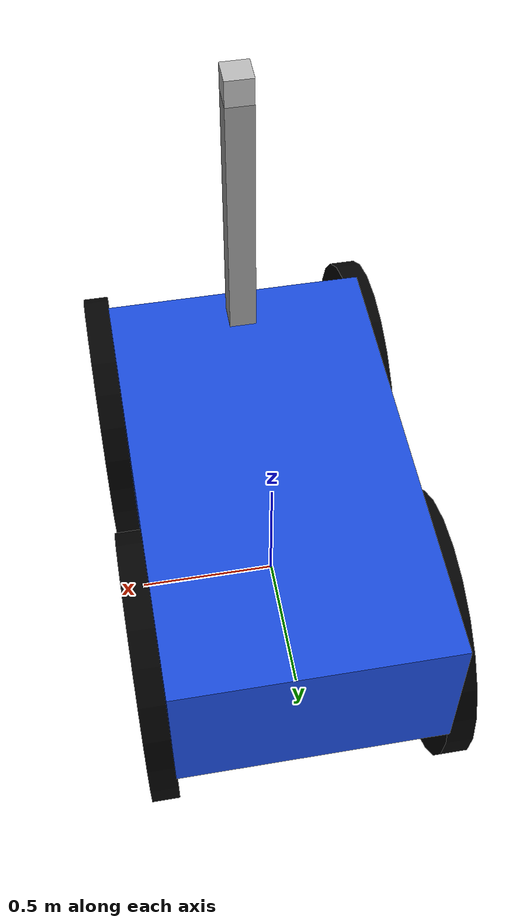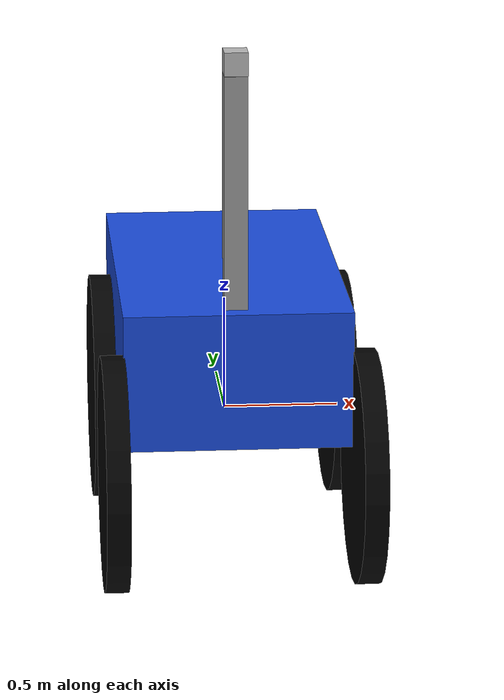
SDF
<?xml version='1.0'?>
<sdf version='1.7'>
  <model name='robot'>

    <link name='link'>
      <inertial>
        <mass>0.963128</mass>
        <inertia>
          <ixx>0.254623</ixx>
          <ixy>0</ixy>
          <ixz>0</ixz>
          <iyy>0.103612</iyy>
          <iyz>0</iyz>
          <izz>0.302045</izz>
        </inertia>
        <pose>0 0 0 0 -0 0</pose>
      </inertial>
      <self_collide>0</self_collide>
      <enable_wind>0</enable_wind>
      <kinematic>0</kinematic>
      <pose>0 0 0.373965 0 -0 0</pose>
      <visual name='chassis_visual'>
        <geometry>
          <box>
            <size>0.97 1.68 0.591646</size>
          </box>
        </geometry>
        <material>
          <ambient>0.102 0.294 0.859 1</ambient>
          <diffuse>0.102 0.294 0.859 1</diffuse>
          <specular>0.5 0.5 0.5 1</specular>
        </material>
      </visual>

      <collision name='chassis_collision'>
        <laser_retro>0</laser_retro>
        <max_contacts>10</max_contacts>
        <pose>0 0 0 0 -0 0</pose>
        <geometry>
          <box>
            <size>0.97 1.68 0.28</size>
          </box>
        </geometry>
        <surface>
          <friction>
            <ode>
              <mu>1</mu>
              <mu2>1</mu2>
              <fdir1>0 0 0</fdir1>
              <slip1>0</slip1>
              <slip2>0</slip2>
            </ode>
            <torsional>
              <coefficient>1</coefficient>
              <patch_radius>0</patch_radius>
              <surface_radius>0</surface_radius>
              <use_patch_radius>1</use_patch_radius>
              <ode>
                <slip>0</slip>
              </ode>
            </torsional>
          </friction>
          <bounce>
            <restitution_coefficient>0</restitution_coefficient>
            <threshold>1e+06</threshold>
          </bounce>
          <contact>
            <collide_without_contact>0</collide_without_contact>
            <collide_without_contact_bitmask>1</collide_without_contact_bitmask>
            <collide_bitmask>1</collide_bitmask>
            <ode>
              <soft_cfm>0</soft_cfm>
              <soft_erp>0.2</soft_erp>
              <kp>1e+13</kp>
              <kd>1</kd>
              <max_vel>0.01</max_vel>
              <min_depth>0</min_depth>
            </ode>
            <bullet>
              <split_impulse>1</split_impulse>
              <split_impulse_penetration_threshold>-0.01</split_impulse_penetration_threshold>
              <soft_cfm>0</soft_cfm>
              <soft_erp>0.2</soft_erp>
              <kp>1e+13</kp>
              <kd>1</kd>
            </bullet>
          </contact>
        </surface>
      </collision>

      <sensor name="lidar_back" type="gpu_lidar">
        <pose>0 0.85 0.2 0 0 1.5708</pose>
        <topic>lidar_back</topic>
        <update_rate>10</update_rate>
        <always_on>1</always_on>
        <visualize>1</visualize>
        <lidar>
            <scan>
            <horizontal>
              <samples>640</samples>
              <resolution>1</resolution>
              <min_angle>-1.6</min_angle>
              <max_angle>1.6</max_angle>
            </horizontal>
            <vertical>
              <samples>1</samples>
              <resolution>1</resolution>
              <min_angle>-0.1</min_angle>
              <max_angle>0.1</max_angle>
            </vertical>
          </scan>
          <range>
            <min>0.08</min>
            <max>10.0</max>
            <resolution>0.01</resolution>
          </range>
        </lidar>
        <alwaysOn>1</alwaysOn>
        <visualize>true</visualize>
      </sensor>

      <sensor name="lidar_front" type="gpu_lidar">
        <pose>0 -0.8 0.2 0 0 -1.5708</pose>
        <topic>lidar_front</topic>
        <update_rate>10</update_rate>
        <always_on>1</always_on>
        <visualize>1</visualize>
        <lidar>
            <scan>
            <horizontal>
              <samples>640</samples>
              <resolution>1</resolution>
              <min_angle>-1.6</min_angle>
              <max_angle>1.6</max_angle>
            </horizontal>
            <vertical>
              <samples>1</samples>
              <resolution>1</resolution>
              <min_angle>-0.1</min_angle>
              <max_angle>0.1</max_angle>
            </vertical>
          </scan>
          <range>
            <min>0.1</min>
            <max>25</max>
            <resolution>0.01</resolution>
          </range>
        </lidar>
        <alwaysOn>1</alwaysOn>
        <visualize>true</visualize>
      </sensor>

    </link>

    <link name='link_0'>
      <inertial>
        <mass>0.00987023</mass>
        <inertia>
          <ixx>0.00082989</ixx>
          <ixy>0</ixy>
          <ixz>0</ixz>
          <iyy>0.00083146</iyy>
          <iyz>0</iyz>
          <izz>1.632e-05</izz>
        </inertia>
        <pose>0 0 0 0 -0 0</pose>
      </inertial>
      <pose>-0.0075 -0.715 1.16917 0 -0 0</pose>
      <gravity>1</gravity>
      <self_collide>0</self_collide>
      <kinematic>0</kinematic>
      <enable_wind>0</enable_wind>
      <visual name='visual'>
        <pose>0 0 0 0 -0 0</pose>
        <geometry>
          <box>
            <size>0.1 0.1 1</size>
          </box>
        </geometry>
        <material>
          <lighting>1</lighting>
          <script>
            <uri>file://media/materials/scripts/gazebo.material</uri>
            <name>Gazebo/Grey</name>
          </script>
          <shader type='pixel'>
            <normal_map>__default__</normal_map>
          </shader>
          <ambient>0.3 0.3 0.3 1</ambient>
          <diffuse>0.7 0.7 0.7 1</diffuse>
          <specular>0.01 0.01 0.01 1</specular>
          <emissive>0 0 0 1</emissive>
        </material>
        <transparency>0</transparency>
        <cast_shadows>1</cast_shadows>
      </visual>
      <collision name='collision'>
        <laser_retro>0</laser_retro>
        <max_contacts>10</max_contacts>
        <pose>0 0 0 0 -0 0</pose>
        <geometry>
          <box>
            <size>0.104281 0.094668 1</size>
          </box>
        </geometry>
        <surface>
          <friction>
            <ode>
              <mu>1</mu>
              <mu2>1</mu2>
              <fdir1>0 0 0</fdir1>
              <slip1>0</slip1>
              <slip2>0</slip2>
            </ode>
            <torsional>
              <coefficient>1</coefficient>
              <patch_radius>0</patch_radius>
              <surface_radius>0</surface_radius>
              <use_patch_radius>1</use_patch_radius>
              <ode>
                <slip>0</slip>
              </ode>
            </torsional>
          </friction>
          <bounce>
            <restitution_coefficient>0</restitution_coefficient>
            <threshold>1e+06</threshold>
          </bounce>
          <contact>
            <collide_without_contact>0</collide_without_contact>
            <collide_without_contact_bitmask>1</collide_without_contact_bitmask>
            <collide_bitmask>1</collide_bitmask>
            <ode>
              <soft_cfm>0</soft_cfm>
              <soft_erp>0.2</soft_erp>
              <kp>1e+13</kp>
              <kd>1</kd>
              <max_vel>0.01</max_vel>
              <min_depth>0</min_depth>
            </ode>
            <bullet>
              <split_impulse>1</split_impulse>
              <split_impulse_penetration_threshold>-0.01</split_impulse_penetration_threshold>
              <soft_cfm>0</soft_cfm>
              <soft_erp>0.2</soft_erp>
              <kp>1e+13</kp>
              <kd>1</kd>
            </bullet>
          </contact>
        </surface>
      </collision>
    </link>

    <link name='wheel_fl'>
      <pose>0.53 -0.86 0 3.14 1.57 3.14</pose>
      <visual name='wheel_fl_visual'>
        <geometry>
          <cylinder>
            <radius>0.5</radius>
            <length>0.1</length>
          </cylinder>
        </geometry>
         <material>
          <ambient>0.0118 0.0118 0.0118 1</ambient>
          <diffuse>0.0118 0.0118 0.0118 1</diffuse>
          <specular>0.5 0.5 0.5 1</specular>
        </material>
      </visual>
      <collision name='wheel_fl_collision'>
        <geometry>
          <cylinder>
            <radius>0.5</radius>
            <length>0.1</length>
          </cylinder>
        </geometry>
      </collision>
    </link>
    <link name='wheel_fr'>
      <pose>-0.53 -0.89 0 3.14 1.57 3.14</pose>
      <visual name='wheel_fr_visual'>
        <geometry>
          <cylinder>
            <radius>0.5</radius>
            <length>0.1</length>
          </cylinder>
        </geometry>
         <material>
          <ambient>0.0118 0.0118 0.0118 1</ambient>
          <diffuse>0.0118 0.0118 0.0118 1</diffuse>
          <specular>0.5 0.5 0.5 1</specular>
        </material>
      </visual>
      <collision name='wheel_fr_collision'>
        <geometry>
          <cylinder>
            <radius>0.5</radius>
            <length>0.1</length>
          </cylinder>
        </geometry>
      </collision>
    </link>

    <link name='wheel_bl'>
      <pose>0.53 0.34 0 3.14 1.57 3.14</pose>
      <visual name='wheel_bl_visual'>
        <geometry>
          <cylinder>
            <radius>0.5</radius>
            <length>0.1</length>
          </cylinder>
        </geometry>
         <material>
          <ambient>0.0118 0.0118 0.0118 1</ambient>
          <diffuse>0.0118 0.0118 0.0118 1</diffuse>
          <specular>0.5 0.5 0.5 1</specular>
        </material>
      </visual>
      <collision name='wheel_bl_collision'>
        <geometry>
          <cylinder>
            <radius>0.5</radius>
            <length>0.1</length>
          </cylinder>
        </geometry>
      </collision>
    </link>

    <link name='wheel_br'>
      <pose>-0.53 0.34 0 3.14 1.57 3.14</pose>
      <visual name='wheel_br_visual'>
        <geometry>
          <cylinder>
            <radius>0.5</radius>
            <length>0.1</length>
          </cylinder>
        </geometry>
         <material>
          <ambient>0.0118 0.0118 0.0118 1</ambient>
          <diffuse>0.0118 0.0118 0.0118 1</diffuse>
          <specular>0.5 0.5 0.5 1</specular>
        </material>
      </visual>
      <collision name='wheel_br_collision'>
        <geometry>
          <cylinder>
            <radius>0.5</radius>
            <length>0.1</length>
          </cylinder>
        </geometry>
      </collision>
    </link>

    <model name='camera'>
      <pose>-0.007084 -0.713487 1.71975 3.14159 0 -1.5708</pose>
      <static>0</static>
      <link name='link'>
        <inertial>
          <mass>0.1</mass>
          <inertia>
            <ixx>0.000166667</ixx>
            <iyy>0.000166667</iyy>
            <izz>0.000166667</izz>
            <ixy>0</ixy>
            <ixz>0</ixz>
            <iyz>0</iyz>
          </inertia>
          <pose>0 0 0 0 0 0</pose>
        </inertial>
        <collision name='collision'>
          <geometry>
            <box>
              <size>0.1 0.1 0.1</size>
            </box>
          </geometry>
          <max_contacts>10</max_contacts>
          <surface>
            <contact>
              <ode/>
            </contact>
            <bounce/>
            <friction>
              <torsional>
                <ode/>
              </torsional>
              <ode/>
            </friction>
          </surface>
        </collision>
        <visual name='visual'>
          <geometry>
            <box>
              <size>0.1 0.1 0.1</size>
            </box>
          </geometry>
        </visual>
        <sensor name='camera' type='camera'>
          <camera>
            <horizontal_fov>1.67</horizontal_fov>
            <image>
              <width>320</width>
              <height>240</height>
            </image>
            <clip>
              <near>0.1</near>
              <far>100</far>
            </clip>
          </camera>
          <always_on>1</always_on>
          <update_rate>30</update_rate>
          <visualize>1</visualize>
        </sensor>
        <self_collide>0</self_collide>
        <enable_wind>0</enable_wind>
        <kinematic>0</kinematic>
      </link>
    </model>

    <joint name='joint_fl' type='revolute'>
      <parent>link</parent>
      <child>wheel_fl</child>
    </joint>

    <joint name='joint_fr' type='revolute'>
      <parent>link</parent>
      <child>wheel_fr</child>
    </joint>

    <joint name='joint_bl' type='revolute'>
      <parent>link</parent>
      <child>wheel_bl</child>
    </joint>

    <joint name='joint_br' type='revolute'>
      <parent>link</parent>
      <child>wheel_br</child>
    </joint>

    <joint name='link_0_JOINT_1' type='revolute'>
      <parent>link_0</parent>
      <child>camera::link</child>
      <pose>0 0 0 0 0 0</pose>
      <physics>
        <ode>
          <limit>
            <cfm>0</cfm>
            <erp>0.2</erp>
          </limit>
          <suspension>
            <cfm>0</cfm>
            <erp>0.2</erp>
          </suspension>
        </ode>
      </physics>
    </joint>

    <joint name='link_JOINT_0' type='fixed'>
      <parent>link</parent>
      <child>link_0</child>
      <pose>0 0 0 0 0 0</pose>
      <physics>
        <ode>
          <limit>
            <cfm>0</cfm>
            <erp>0.2</erp>
          </limit>
          <suspension>
            <cfm>0</cfm>
            <erp>0.2</erp>
          </suspension>
        </ode>
      </physics>
    </joint>

    <plugin
      filename="libignition-gazebo-diff-drive-system.so"
      name="ignition::gazebo::systems::DiffDrive">

      <left_joint>joint_fl</left_joint>
      <right_joint>joint_fr</right_joint>

      <wheel_separation>0.7</wheel_separation>
      <wheel_radius>0.5</wheel_radius>

      <topic>cmd_vel</topic>

      <odom_publish_frequency>10</odom_publish_frequency>
    </plugin>
    <plugin
      filename="libignition-gazebo-sensors-system.so"
      name="ignition::gazebo::systems::Sensors">
    </plugin>
    <static>0</static>
    <allow_auto_disable>0</allow_auto_disable>
  </model>
</sdf>
